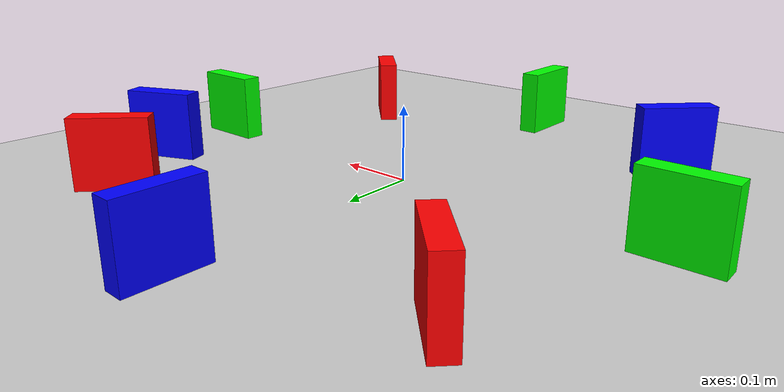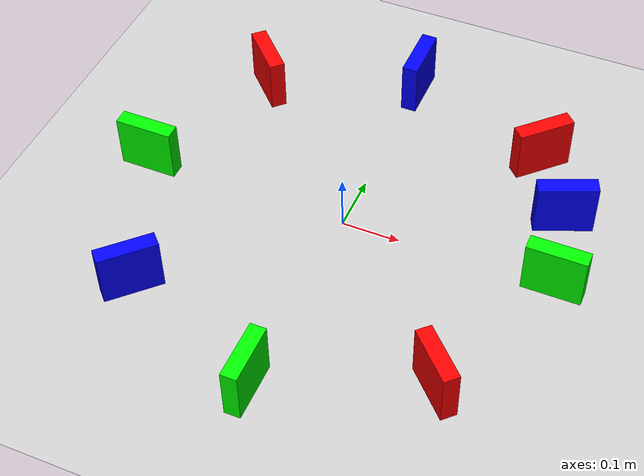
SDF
<sdf version="1.7">
 <world name="default">
  <light name="sun" type="directional">
   <pose>0 0 10 0 -0 0</pose>
   <diffuse>0.8 0.8 0.8 1</diffuse>
   <specular>0.2 0.2 0.2 1</specular>
   <attenuation>
    <range>1000</range>
    <constant>0.9</constant>
    <linear>0.01</linear>
    <quadratic>0.001</quadratic>
   </attenuation>
   <direction>-0.5 0.1 -0.9</direction>
   <spot><inner_angle>0</inner_angle><outer_angle>0</outer_angle><falloff>0</falloff></spot>
  </light>
  <model name="ground_plane">
   <static>1</static>
   <link name="link">
    <collision name="collision">
     <geometry><plane><normal>0 0 1</normal><size>100 100</size></plane></geometry>
     <surface>
      <contact><collide_bitmask>65535</collide_bitmask></contact>
      <friction><ode><mu>100</mu><mu2>50</mu2></ode></friction>
     </surface>
    </collision>
    <visual name="visual">
     <cast_shadows>0</cast_shadows>
     <geometry><plane><normal>0 0 1</normal><size>100 100</size></plane></geometry>
     <material>
      <script><uri>file://media/materials/scripts/gazebo.material</uri><name>Gazebo/Grey</name></script>
     </material>
    </visual>
   </link>
  </model>
  <gravity>0 0 -9.8</gravity>
  <magnetic_field>6e-06 2.3e-05 -4.2e-05</magnetic_field>
  <atmosphere type="adiabatic"/>
  <physics type="ode">
   <max_step_size>0.001</max_step_size>
   <real_time_factor>1</real_time_factor>
   <real_time_update_rate>1000</real_time_update_rate>
  </physics>
  <scene><ambient>0.4 0.4 0.4 1</ambient><background>0.7 0.7 0.7 1</background><shadows>1</shadows></scene>
  <spherical_coordinates>
   <surface_model>EARTH_WGS84</surface_model>
   <latitude_deg>0</latitude_deg>
   <longitude_deg>0</longitude_deg>
   <elevation>0</elevation>
   <heading_deg>0</heading_deg>
  </spherical_coordinates>
  <model name="unit_box">
   <link name="link">
    <inertial>
     <mass>1</mass>
     <inertia>
      <ixx>0.166667</ixx>
      <ixy>0</ixy>
      <ixz>0</ixz>
      <iyy>0.166667</iyy>
      <iyz>0</iyz>
      <izz>0.166667</izz>
     </inertia>
    </inertial>
    <visual name="visual">
     <geometry><box><size>0.099797 0.027173 0.094974</size></box></geometry>
     <material>
      <script><name>Gazebo/Grey</name><uri>file://media/materials/scripts/gazebo.material</uri></script>
      <shader type="pixel"><normal_map>__default__</normal_map></shader>
      <ambient>0 1 0 0</ambient>
      <diffuse>0.7 0.7 0.7 1</diffuse>
      <specular>0.01 0.01 0.01 1</specular>
      <emissive>0 0 0 1</emissive>
     </material>
    </visual>
    <collision name="collision">
     <geometry><box><size>0.099797 0.027173 0.094974</size></box></geometry>
     <surface>
      <friction>
       <ode><mu>1</mu><mu2>1</mu2><fdir1>0 0 0</fdir1><slip1>0</slip1><slip2>0</slip2></ode>
       <torsional>
        <coefficient>1</coefficient>
        <patch_radius>0</patch_radius>
        <surface_radius>0</surface_radius>
        <use_patch_radius>1</use_patch_radius>
        <ode><slip>0</slip></ode>
       </torsional>
      </friction>
      <bounce><restitution_coefficient>0</restitution_coefficient><threshold>1e+06</threshold></bounce>
      <contact>
       <collide_without_contact>0</collide_without_contact>
       <collide_without_contact_bitmask>1</collide_without_contact_bitmask>
       <collide_bitmask>1</collide_bitmask>
       <ode>
        <soft_cfm>0</soft_cfm>
        <soft_erp>0.2</soft_erp>
        <kp>1e+13</kp>
        <kd>1</kd>
        <max_vel>0.01</max_vel>
        <min_depth>0</min_depth>
       </ode>
       <bullet>
        <split_impulse>1</split_impulse>
        <split_impulse_penetration_threshold>-0.01</split_impulse_penetration_threshold>
        <soft_cfm>0</soft_cfm>
        <soft_erp>0.2</soft_erp>
        <kp>1e+13</kp>
        <kd>1</kd>
       </bullet>
      </contact>
     </surface>
    </collision>
   </link>
   <static>0</static>
   <pose>0.362278 6e-06 0.047487 0 -1e-06 -0.000251</pose>
  </model>
  <model name="unit_box_clone_clone">
   <link name="link">
    <inertial>
     <mass>1</mass>
     <inertia>
      <ixx>0.166667</ixx>
      <ixy>0</ixy>
      <ixz>0</ixz>
      <iyy>0.166667</iyy>
      <iyz>0</iyz>
      <izz>0.166667</izz>
     </inertia>
    </inertial>
    <visual name="visual">
     <geometry><box><size>0.099797 0.027173 0.094974</size></box></geometry>
     <material>
      <script><name>Gazebo/Grey</name><uri>file://media/materials/scripts/gazebo.material</uri></script>
      <shader type="pixel"><normal_map>__default__</normal_map></shader>
      <ambient>0 0 1 0</ambient>
      <diffuse>0.7 0.7 0.7 1</diffuse>
      <specular>0.01 0.01 0.01 1</specular>
      <emissive>0 0 0 1</emissive>
     </material>
    </visual>
    <collision name="collision">
     <geometry><box><size>0.099797 0.027173 0.094974</size></box></geometry>
     <surface>
      <friction>
       <ode><mu>1</mu><mu2>1</mu2><fdir1>0 0 0</fdir1><slip1>0</slip1><slip2>0</slip2></ode>
       <torsional>
        <coefficient>1</coefficient>
        <patch_radius>0</patch_radius>
        <surface_radius>0</surface_radius>
        <use_patch_radius>1</use_patch_radius>
        <ode><slip>0</slip></ode>
       </torsional>
      </friction>
      <bounce><restitution_coefficient>0</restitution_coefficient><threshold>1e+06</threshold></bounce>
      <contact>
       <collide_without_contact>0</collide_without_contact>
       <collide_without_contact_bitmask>1</collide_without_contact_bitmask>
       <collide_bitmask>1</collide_bitmask>
       <ode>
        <soft_cfm>0</soft_cfm>
        <soft_erp>0.2</soft_erp>
        <kp>1e+13</kp>
        <kd>1</kd>
        <max_vel>0.01</max_vel>
        <min_depth>0</min_depth>
       </ode>
       <bullet>
        <split_impulse>1</split_impulse>
        <split_impulse_penetration_threshold>-0.01</split_impulse_penetration_threshold>
        <soft_cfm>0</soft_cfm>
        <soft_erp>0.2</soft_erp>
        <kp>1e+13</kp>
        <kd>1</kd>
       </bullet>
      </contact>
     </surface>
    </collision>
   </link>
   <static>0</static>
   <pose>-0.000518 0.351217 0.047487 0 -1e-06 1.57214</pose>
  </model>
  <model name="unit_box_clone">
   <link name="link">
    <inertial>
     <mass>1</mass>
     <inertia>
      <ixx>0.166667</ixx>
      <ixy>0</ixy>
      <ixz>0</ixz>
      <iyy>0.166667</iyy>
      <iyz>0</iyz>
      <izz>0.166667</izz>
     </inertia>
    </inertial>
    <visual name="visual">
     <geometry><box><size>0.099797 0.027173 0.094974</size></box></geometry>
     <material>
      <script><name>Gazebo/Grey</name><uri>file://media/materials/scripts/gazebo.material</uri></script>
      <shader type="pixel"><normal_map>__default__</normal_map></shader>
      <ambient>1 0 0 0</ambient>
      <diffuse>0.7 0.7 0.7 1</diffuse>
      <specular>0.01 0.01 0.01 1</specular>
      <emissive>0 0 0 1</emissive>
     </material>
    </visual>
    <collision name="collision">
     <geometry><box><size>0.099797 0.027173 0.094974</size></box></geometry>
     <surface>
      <friction>
       <ode><mu>1</mu><mu2>1</mu2><fdir1>0 0 0</fdir1><slip1>0</slip1><slip2>0</slip2></ode>
       <torsional>
        <coefficient>1</coefficient>
        <patch_radius>0</patch_radius>
        <surface_radius>0</surface_radius>
        <use_patch_radius>1</use_patch_radius>
        <ode><slip>0</slip></ode>
       </torsional>
      </friction>
      <bounce><restitution_coefficient>0</restitution_coefficient><threshold>1e+06</threshold></bounce>
      <contact>
       <collide_without_contact>0</collide_without_contact>
       <collide_without_contact_bitmask>1</collide_without_contact_bitmask>
       <collide_bitmask>1</collide_bitmask>
       <ode>
        <soft_cfm>0</soft_cfm>
        <soft_erp>0.2</soft_erp>
        <kp>1e+13</kp>
        <kd>1</kd>
        <max_vel>0.01</max_vel>
        <min_depth>0</min_depth>
       </ode>
       <bullet>
        <split_impulse>1</split_impulse>
        <split_impulse_penetration_threshold>-0.01</split_impulse_penetration_threshold>
        <soft_cfm>0</soft_cfm>
        <soft_erp>0.2</soft_erp>
        <kp>1e+13</kp>
        <kd>1</kd>
       </bullet>
      </contact>
     </surface>
    </collision>
   </link>
   <static>0</static>
   <pose>0.259101 0.258188 0.047487 0 -1e-06 0.781611</pose>
  </model>
  <model name="unit_box_clone_clone_clone">
   <link name="link">
    <inertial>
     <mass>1</mass>
     <inertia>
      <ixx>0.166667</ixx>
      <ixy>0</ixy>
      <ixz>0</ixz>
      <iyy>0.166667</iyy>
      <iyz>0</iyz>
      <izz>0.166667</izz>
     </inertia>
    </inertial>
    <visual name="visual">
     <geometry><box><size>0.099797 0.027173 0.094974</size></box></geometry>
     <material>
      <script><name>Gazebo/Grey</name><uri>file://media/materials/scripts/gazebo.material</uri></script>
      <shader type="pixel"><normal_map>__default__</normal_map></shader>
      <ambient>0 0 1 0</ambient>
      <diffuse>0.7 0.7 0.7 1</diffuse>
      <specular>0.01 0.01 0.01 1</specular>
      <emissive>0 0 0 1</emissive>
     </material>
    </visual>
    <collision name="collision">
     <geometry><box><size>0.099797 0.027173 0.094974</size></box></geometry>
     <surface>
      <friction>
       <ode><mu>1</mu><mu2>1</mu2><fdir1>0 0 0</fdir1><slip1>0</slip1><slip2>0</slip2></ode>
       <torsional>
        <coefficient>1</coefficient>
        <patch_radius>0</patch_radius>
        <surface_radius>0</surface_radius>
        <use_patch_radius>1</use_patch_radius>
        <ode><slip>0</slip></ode>
       </torsional>
      </friction>
      <bounce><restitution_coefficient>0</restitution_coefficient><threshold>1e+06</threshold></bounce>
      <contact>
       <collide_without_contact>0</collide_without_contact>
       <collide_without_contact_bitmask>1</collide_without_contact_bitmask>
       <collide_bitmask>1</collide_bitmask>
       <ode>
        <soft_cfm>0</soft_cfm>
        <soft_erp>0.2</soft_erp>
        <kp>1e+13</kp>
        <kd>1</kd>
        <max_vel>0.01</max_vel>
        <min_depth>0</min_depth>
       </ode>
       <bullet>
        <split_impulse>1</split_impulse>
        <split_impulse_penetration_threshold>-0.01</split_impulse_penetration_threshold>
        <soft_cfm>0</soft_cfm>
        <soft_erp>0.2</soft_erp>
        <kp>1e+13</kp>
        <kd>1</kd>
       </bullet>
      </contact>
     </surface>
    </collision>
   </link>
   <static>0</static>
   <pose>0.335926 0.139082 0.047487 -7e-06 -2e-06 0.397386</pose>
  </model>
  <model name="unit_box_clone_clone_0">
   <link name="link">
    <inertial>
     <mass>1</mass>
     <inertia>
      <ixx>0.166667</ixx>
      <ixy>0</ixy>
      <ixz>0</ixz>
      <iyy>0.166667</iyy>
      <iyz>0</iyz>
      <izz>0.166667</izz>
     </inertia>
    </inertial>
    <visual name="visual">
     <geometry><box><size>0.099797 0.027173 0.094974</size></box></geometry>
     <material>
      <script><name>Gazebo/Grey</name><uri>file://media/materials/scripts/gazebo.material</uri></script>
      <shader type="pixel"><normal_map>__default__</normal_map></shader>
      <ambient>1 0 0 0</ambient>
      <diffuse>0.7 0.7 0.7 1</diffuse>
      <specular>0.01 0.01 0.01 1</specular>
      <emissive>0 0 0 1</emissive>
     </material>
    </visual>
    <collision name="collision">
     <geometry><box><size>0.099797 0.027173 0.094974</size></box></geometry>
     <surface>
      <friction>
       <ode><mu>1</mu><mu2>1</mu2><fdir1>0 0 0</fdir1><slip1>0</slip1><slip2>0</slip2></ode>
       <torsional>
        <coefficient>1</coefficient>
        <patch_radius>0</patch_radius>
        <surface_radius>0</surface_radius>
        <use_patch_radius>1</use_patch_radius>
        <ode><slip>0</slip></ode>
       </torsional>
      </friction>
      <bounce><restitution_coefficient>0</restitution_coefficient><threshold>1e+06</threshold></bounce>
      <contact>
       <collide_without_contact>0</collide_without_contact>
       <collide_without_contact_bitmask>1</collide_without_contact_bitmask>
       <collide_bitmask>1</collide_bitmask>
       <ode>
        <soft_cfm>0</soft_cfm>
        <soft_erp>0.2</soft_erp>
        <kp>1e+13</kp>
        <kd>1</kd>
        <max_vel>0.01</max_vel>
        <min_depth>0</min_depth>
       </ode>
       <bullet>
        <split_impulse>1</split_impulse>
        <split_impulse_penetration_threshold>-0.01</split_impulse_penetration_threshold>
        <soft_cfm>0</soft_cfm>
        <soft_erp>0.2</soft_erp>
        <kp>1e+13</kp>
        <kd>1</kd>
       </bullet>
      </contact>
     </surface>
    </collision>
   </link>
   <static>0</static>
   <pose>-0.254696 0.255178 0.047487 0 -1e-06 2.35721</pose>
  </model>
  <model name="unit_box_clone_0">
   <link name="link">
    <inertial>
     <mass>1</mass>
     <inertia>
      <ixx>0.166667</ixx>
      <ixy>0</ixy>
      <ixz>0</ixz>
      <iyy>0.166667</iyy>
      <iyz>0</iyz>
      <izz>0.166667</izz>
     </inertia>
    </inertial>
    <visual name="visual">
     <geometry><box><size>0.099797 0.027173 0.094974</size></box></geometry>
     <material>
      <script><name>Gazebo/Grey</name><uri>file://media/materials/scripts/gazebo.material</uri></script>
      <shader type="pixel"><normal_map>__default__</normal_map></shader>
      <ambient>0 1 0 0</ambient>
      <diffuse>0.7 0.7 0.7 1</diffuse>
      <specular>0.01 0.01 0.01 1</specular>
      <emissive>0 0 0 1</emissive>
     </material>
    </visual>
    <collision name="collision">
     <geometry><box><size>0.099797 0.027173 0.094974</size></box></geometry>
     <surface>
      <friction>
       <ode><mu>1</mu><mu2>1</mu2><fdir1>0 0 0</fdir1><slip1>0</slip1><slip2>0</slip2></ode>
       <torsional>
        <coefficient>1</coefficient>
        <patch_radius>0</patch_radius>
        <surface_radius>0</surface_radius>
        <use_patch_radius>1</use_patch_radius>
        <ode><slip>0</slip></ode>
       </torsional>
      </friction>
      <bounce><restitution_coefficient>0</restitution_coefficient><threshold>1e+06</threshold></bounce>
      <contact>
       <collide_without_contact>0</collide_without_contact>
       <collide_without_contact_bitmask>1</collide_without_contact_bitmask>
       <collide_bitmask>1</collide_bitmask>
       <ode>
        <soft_cfm>0</soft_cfm>
        <soft_erp>0.2</soft_erp>
        <kp>1e+13</kp>
        <kd>1</kd>
        <max_vel>0.01</max_vel>
        <min_depth>0</min_depth>
       </ode>
       <bullet>
        <split_impulse>1</split_impulse>
        <split_impulse_penetration_threshold>-0.01</split_impulse_penetration_threshold>
        <soft_cfm>0</soft_cfm>
        <soft_erp>0.2</soft_erp>
        <kp>1e+13</kp>
        <kd>1</kd>
       </bullet>
      </contact>
     </surface>
    </collision>
   </link>
   <static>0</static>
   <pose>-0.359627 -2e-06 0.047487 0 1e-06 -0.002451</pose>
  </model>
  <model name="unit_box_clone_clone_clone_0">
   <link name="link">
    <inertial>
     <mass>1</mass>
     <inertia>
      <ixx>0.166667</ixx>
      <ixy>0</ixy>
      <ixz>0</ixz>
      <iyy>0.166667</iyy>
      <iyz>0</iyz>
      <izz>0.166667</izz>
     </inertia>
    </inertial>
    <visual name="visual">
     <geometry><box><size>0.099797 0.027173 0.094974</size></box></geometry>
     <material>
      <script><name>Gazebo/Grey</name><uri>file://media/materials/scripts/gazebo.material</uri></script>
      <shader type="pixel"><normal_map>__default__</normal_map></shader>
      <ambient>0 0 1 0</ambient>
      <diffuse>0.7 0.7 0.7 1</diffuse>
      <specular>0.01 0.01 0.01 1</specular>
      <emissive>0 0 0 1</emissive>
     </material>
    </visual>
    <collision name="collision">
     <geometry><box><size>0.099797 0.027173 0.094974</size></box></geometry>
     <surface>
      <friction>
       <ode><mu>1</mu><mu2>1</mu2><fdir1>0 0 0</fdir1><slip1>0</slip1><slip2>0</slip2></ode>
       <torsional>
        <coefficient>1</coefficient>
        <patch_radius>0</patch_radius>
        <surface_radius>0</surface_radius>
        <use_patch_radius>1</use_patch_radius>
        <ode><slip>0</slip></ode>
       </torsional>
      </friction>
      <bounce><restitution_coefficient>0</restitution_coefficient><threshold>1e+06</threshold></bounce>
      <contact>
       <collide_without_contact>0</collide_without_contact>
       <collide_without_contact_bitmask>1</collide_without_contact_bitmask>
       <collide_bitmask>1</collide_bitmask>
       <ode>
        <soft_cfm>0</soft_cfm>
        <soft_erp>0.2</soft_erp>
        <kp>1e+13</kp>
        <kd>1</kd>
        <max_vel>0.01</max_vel>
        <min_depth>0</min_depth>
       </ode>
       <bullet>
        <split_impulse>1</split_impulse>
        <split_impulse_penetration_threshold>-0.01</split_impulse_penetration_threshold>
        <soft_cfm>0</soft_cfm>
        <soft_erp>0.2</soft_erp>
        <kp>1e+13</kp>
        <kd>1</kd>
       </bullet>
      </contact>
     </surface>
    </collision>
   </link>
   <static>0</static>
   <pose>-0.254741 -0.254353 0.047487 4e-06 -0 -2.35529</pose>
  </model>
  <model name="unit_box_clone_1">
   <link name="link">
    <inertial>
     <mass>1</mass>
     <inertia>
      <ixx>0.166667</ixx>
      <ixy>0</ixy>
      <ixz>0</ixz>
      <iyy>0.166667</iyy>
      <iyz>0</iyz>
      <izz>0.166667</izz>
     </inertia>
    </inertial>
    <visual name="visual">
     <geometry><box><size>0.099797 0.027173 0.094974</size></box></geometry>
     <material>
      <script><name>Gazebo/Grey</name><uri>file://media/materials/scripts/gazebo.material</uri></script>
      <shader type="pixel"><normal_map>__default__</normal_map></shader>
      <ambient>0 1 0 0</ambient>
      <diffuse>0.7 0.7 0.7 1</diffuse>
      <specular>0.01 0.01 0.01 1</specular>
      <emissive>0 0 0 1</emissive>
     </material>
    </visual>
    <collision name="collision">
     <geometry><box><size>0.099797 0.027173 0.094974</size></box></geometry>
     <surface>
      <friction>
       <ode><mu>1</mu><mu2>1</mu2><fdir1>0 0 0</fdir1><slip1>0</slip1><slip2>0</slip2></ode>
       <torsional>
        <coefficient>1</coefficient>
        <patch_radius>0</patch_radius>
        <surface_radius>0</surface_radius>
        <use_patch_radius>1</use_patch_radius>
        <ode><slip>0</slip></ode>
       </torsional>
      </friction>
      <bounce><restitution_coefficient>0</restitution_coefficient><threshold>1e+06</threshold></bounce>
      <contact>
       <collide_without_contact>0</collide_without_contact>
       <collide_without_contact_bitmask>1</collide_without_contact_bitmask>
       <collide_bitmask>1</collide_bitmask>
       <ode>
        <soft_cfm>0</soft_cfm>
        <soft_erp>0.2</soft_erp>
        <kp>1e+13</kp>
        <kd>1</kd>
        <max_vel>0.01</max_vel>
        <min_depth>0</min_depth>
       </ode>
       <bullet>
        <split_impulse>1</split_impulse>
        <split_impulse_penetration_threshold>-0.01</split_impulse_penetration_threshold>
        <soft_cfm>0</soft_cfm>
        <soft_erp>0.2</soft_erp>
        <kp>1e+13</kp>
        <kd>1</kd>
       </bullet>
      </contact>
     </surface>
    </collision>
   </link>
   <static>0</static>
   <pose>-0.000238 -0.360611 0.047487 -0 -1e-06 -1.56965</pose>
  </model>
  <model name="unit_box_clone_clone_0_clone">
   <link name="link">
    <inertial>
     <mass>1</mass>
     <inertia>
      <ixx>0.166667</ixx>
      <ixy>0</ixy>
      <ixz>0</ixz>
      <iyy>0.166667</iyy>
      <iyz>0</iyz>
      <izz>0.166667</izz>
     </inertia>
    </inertial>
    <visual name="visual">
     <geometry><box><size>0.099797 0.027173 0.094974</size></box></geometry>
     <material>
      <script><name>Gazebo/Grey</name><uri>file://media/materials/scripts/gazebo.material</uri></script>
      <shader type="pixel"><normal_map>__default__</normal_map></shader>
      <ambient>1 0 0 0</ambient>
      <diffuse>0.7 0.7 0.7 1</diffuse>
      <specular>0.01 0.01 0.01 1</specular>
      <emissive>0 0 0 1</emissive>
     </material>
    </visual>
    <collision name="collision">
     <geometry><box><size>0.099797 0.027173 0.094974</size></box></geometry>
     <surface>
      <friction>
       <ode><mu>1</mu><mu2>1</mu2><fdir1>0 0 0</fdir1><slip1>0</slip1><slip2>0</slip2></ode>
       <torsional>
        <coefficient>1</coefficient>
        <patch_radius>0</patch_radius>
        <surface_radius>0</surface_radius>
        <use_patch_radius>1</use_patch_radius>
        <ode><slip>0</slip></ode>
       </torsional>
      </friction>
      <bounce><restitution_coefficient>0</restitution_coefficient><threshold>1e+06</threshold></bounce>
      <contact>
       <collide_without_contact>0</collide_without_contact>
       <collide_without_contact_bitmask>1</collide_without_contact_bitmask>
       <collide_bitmask>1</collide_bitmask>
       <ode>
        <soft_cfm>0</soft_cfm>
        <soft_erp>0.2</soft_erp>
        <kp>1e+13</kp>
        <kd>1</kd>
        <max_vel>0.01</max_vel>
        <min_depth>0</min_depth>
       </ode>
       <bullet>
        <split_impulse>1</split_impulse>
        <split_impulse_penetration_threshold>-0.01</split_impulse_penetration_threshold>
        <soft_cfm>0</soft_cfm>
        <soft_erp>0.2</soft_erp>
        <kp>1e+13</kp>
        <kd>1</kd>
       </bullet>
      </contact>
     </surface>
    </collision>
   </link>
   <static>0</static>
   <pose>0.257975 -0.255253 0.047477 1e-06 -1e-06 -0.785017</pose>
  </model>
 </world>
</sdf>
